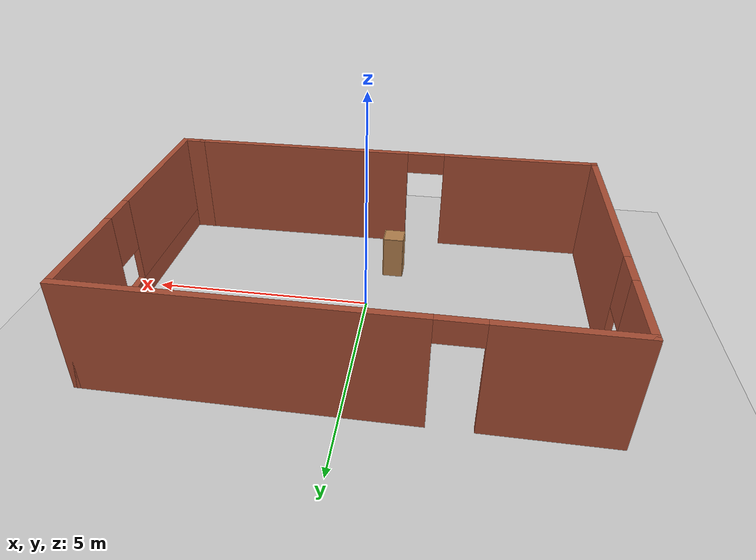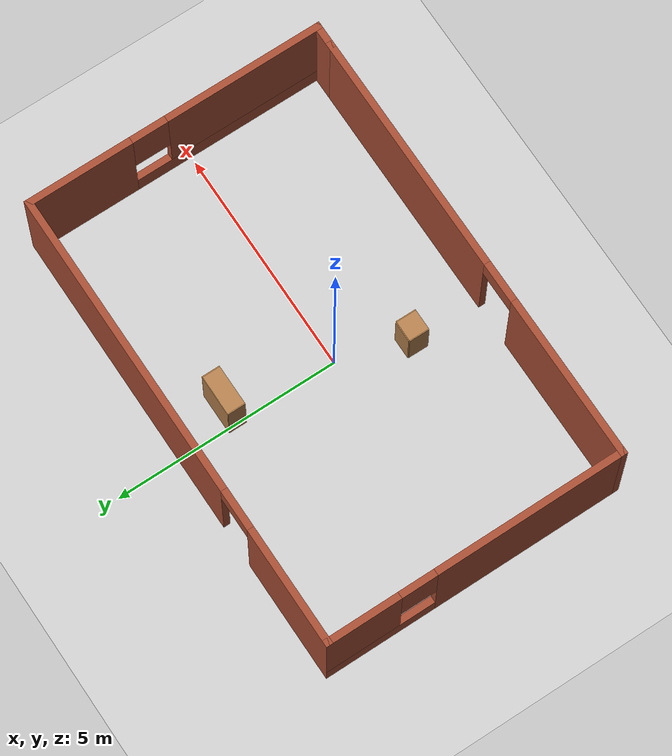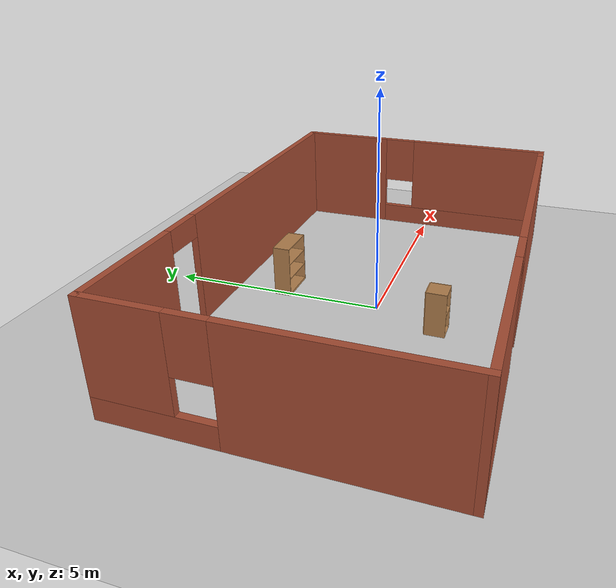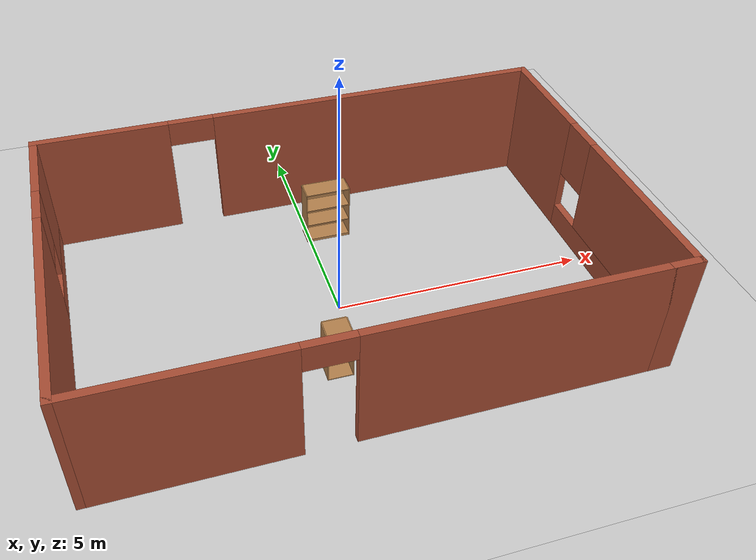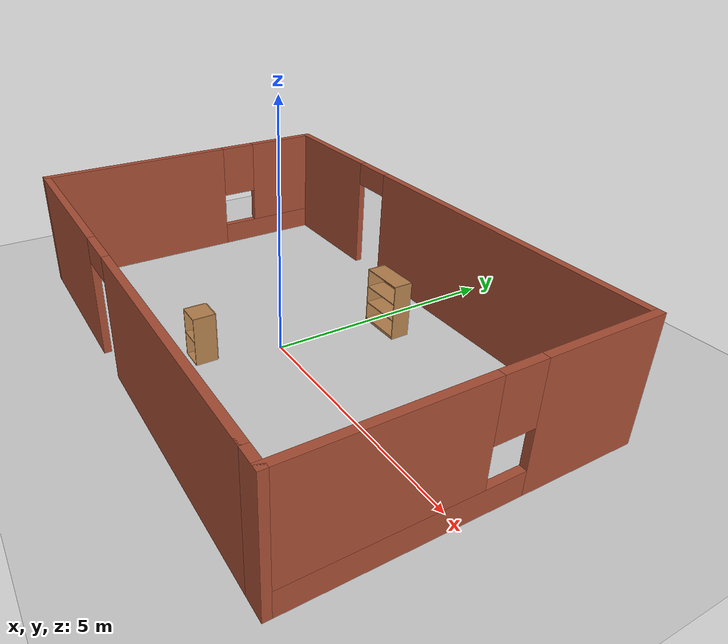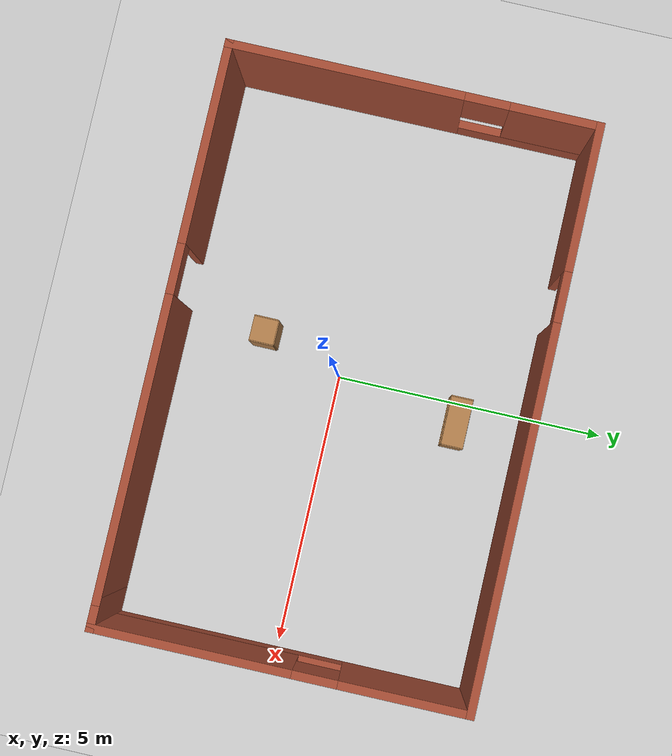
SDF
<sdf version="1.7">
 <world name="default">
  <light name="sun" type="directional">
   <pose>0 0 10 0 -0 0</pose>
   <diffuse>0.8 0.8 0.8 1</diffuse>
   <specular>0.2 0.2 0.2 1</specular>
   <attenuation>
    <range>1000</range>
    <constant>0.9</constant>
    <linear>0.01</linear>
    <quadratic>0.001</quadratic>
   </attenuation>
   <direction>-0.5 0.1 -0.9</direction>
   <spot><inner_angle>0</inner_angle><outer_angle>0</outer_angle><falloff>0</falloff></spot>
  </light>
  <model name="ground_plane">
   <static>1</static>
   <link name="link">
    <collision name="collision">
     <geometry><plane><normal>0 0 1</normal><size>100 100</size></plane></geometry>
     <surface>
      <contact><collide_bitmask>65535</collide_bitmask></contact>
      <friction><ode><mu>100</mu><mu2>50</mu2></ode></friction>
     </surface>
    </collision>
    <visual name="visual">
     <cast_shadows>0</cast_shadows>
     <geometry><plane><normal>0 0 1</normal><size>100 100</size></plane></geometry>
     <material>
      <script><uri>file://media/materials/scripts/gazebo.material</uri><name>Gazebo/Grey</name></script>
     </material>
    </visual>
   </link>
  </model>
  <gravity>0 0 -9.8</gravity>
  <magnetic_field>6e-06 2.3e-05 -4.2e-05</magnetic_field>
  <atmosphere type="adiabatic"/>
  <physics type="ode">
   <max_step_size>0.001</max_step_size>
   <real_time_factor>1</real_time_factor>
   <real_time_update_rate>1000</real_time_update_rate>
  </physics>
  <scene><ambient>0.4 0.4 0.4 1</ambient><background>0.7 0.7 0.7 1</background><shadows>1</shadows></scene>
  <audio><device>default</device></audio>
  <spherical_coordinates>
   <surface_model>EARTH_WGS84</surface_model>
   <latitude_deg>0</latitude_deg>
   <longitude_deg>0</longitude_deg>
   <elevation>0</elevation>
   <heading_deg>0</heading_deg>
  </spherical_coordinates>
  <model name="bookshelf">
   <static>1</static>
   <link name="link">
    <inertial><mass>1</mass></inertial>
    <collision name="back">
     <pose>0 0.005 0.6 0 -0 0</pose>
     <geometry><box><size>0.9 0.01 1.2</size></box></geometry>
    </collision>
    <visual name="visual1">
     <pose>0 0.005 0.6 0 -0 0</pose>
     <geometry><box><size>0.9 0.01 1.2</size></box></geometry>
     <material>
      <script><uri>file://media/materials/scripts/gazebo.material</uri><name>Gazebo/Wood</name></script>
     </material>
    </visual>
    <collision name="left_side">
     <pose>0.45 -0.195 0.6 0 -0 0</pose>
     <geometry><box><size>0.02 0.4 1.2</size></box></geometry>
    </collision>
    <visual name="visual2">
     <pose>0.45 -0.195 0.6 0 -0 0</pose>
     <geometry><box><size>0.02 0.4 1.2</size></box></geometry>
     <material>
      <script><uri>file://media/materials/scripts/gazebo.material</uri><name>Gazebo/Wood</name></script>
     </material>
    </visual>
    <collision name="right_side">
     <pose>-0.45 -0.195 0.6 0 -0 0</pose>
     <geometry><box><size>0.02 0.4 1.2</size></box></geometry>
    </collision>
    <visual name="visual3">
     <pose>-0.45 -0.195 0.6 0 -0 0</pose>
     <geometry><box><size>0.02 0.4 1.2</size></box></geometry>
     <material>
      <script><uri>file://media/materials/scripts/gazebo.material</uri><name>Gazebo/Wood</name></script>
     </material>
    </visual>
    <collision name="bottom">
     <pose>0 -0.195 0.03 0 -0 0</pose>
     <geometry><box><size>0.88 0.4 0.06</size></box></geometry>
    </collision>
    <visual name="visual4">
     <pose>0 -0.195 0.03 0 -0 0</pose>
     <geometry><box><size>0.88 0.4 0.06</size></box></geometry>
     <material>
      <script><uri>file://media/materials/scripts/gazebo.material</uri><name>Gazebo/Wood</name></script>
     </material>
    </visual>
    <collision name="top">
     <pose>0 -0.195 1.19 0 -0 0</pose>
     <geometry><box><size>0.88 0.4 0.02</size></box></geometry>
    </collision>
    <visual name="visual5">
     <pose>0 -0.195 1.19 0 -0 0</pose>
     <geometry><box><size>0.88 0.4 0.02</size></box></geometry>
     <material>
      <script><uri>file://media/materials/scripts/gazebo.material</uri><name>Gazebo/Wood</name></script>
     </material>
    </visual>
    <collision name="low_shelf">
     <pose>0 -0.195 0.43 0 -0 0</pose>
     <geometry><box><size>0.88 0.4 0.02</size></box></geometry>
    </collision>
    <visual name="visual6">
     <pose>0 -0.195 0.43 0 -0 0</pose>
     <geometry><box><size>0.88 0.4 0.02</size></box></geometry>
     <material>
      <script><uri>file://media/materials/scripts/gazebo.material</uri><name>Gazebo/Wood</name></script>
     </material>
    </visual>
    <collision name="high_shelf">
     <pose>0 -0.195 0.8 0 -0 0</pose>
     <geometry><box><size>0.88 0.4 0.02</size></box></geometry>
    </collision>
    <visual name="visual7">
     <pose>0 -0.195 0.8 0 -0 0</pose>
     <geometry><box><size>0.88 0.4 0.02</size></box></geometry>
     <material>
      <script><uri>file://media/materials/scripts/gazebo.material</uri><name>Gazebo/Wood</name></script>
     </material>
    </visual>
   </link>
   <pose>0.38677 2.49076 0 0 -0 0</pose>
  </model>
  <model name="cabinet">
   <static>1</static>
   <link name="cabinet_bottom_plate">
    <inertial>
     <pose>0 0 -1 0 -0 0</pose>
     <inertia><ixx>2.05</ixx><ixy>0</ixy><ixz>0</ixz><iyy>2.05</iyy><iyz>0</iyz><izz>2.05</izz></inertia>
     <mass>25</mass>
    </inertial>
    <collision name="cabinet_bottom_plate_geom">
     <pose>0 0 0.01 0 -0 0</pose>
     <geometry><box><size>0.45 0.45 0.02</size></box></geometry>
    </collision>
    <visual name="cabinet_bottom_plate_geom_visual">
     <pose>0 0 0.01 0 -0 0</pose>
     <geometry><box><size>0.45 0.45 0.02</size></box></geometry>
     <material>
      <script><uri>file://media/materials/scripts/gazebo.material</uri><name>Gazebo/Wood</name></script>
     </material>
    </visual>
    <collision name="cabinet_bottom_plate_geom_cabinet_back_plate">
     <pose>0.235 0 0.51 0 -0 0</pose>
     <geometry><box><size>0.02 0.45 1.02</size></box></geometry>
    </collision>
    <visual name="cabinet_bottom_plate_geom_cabinet_back_plate_visual">
     <pose>0.235 0 0.51 0 -0 0</pose>
     <geometry><box><size>0.02 0.45 1.02</size></box></geometry>
     <material>
      <script><uri>file://media/materials/scripts/gazebo.material</uri><name>Gazebo/Wood</name></script>
     </material>
    </visual>
    <collision name="cabinet_bottom_plate_geom_cabinet_left_plate">
     <pose>0 0.235 0.51 0 -0 0</pose>
     <geometry><box><size>0.45 0.02 1.02</size></box></geometry>
    </collision>
    <visual name="cabinet_bottom_plate_geom_cabinet_left_plate_visual">
     <pose>0 0.235 0.51 0 -0 0</pose>
     <geometry><box><size>0.45 0.02 1.02</size></box></geometry>
     <material>
      <script><uri>file://media/materials/scripts/gazebo.material</uri><name>Gazebo/Wood</name></script>
     </material>
    </visual>
    <collision name="cabinet_bottom_plate_geom_cabinet_middle_plate">
     <pose>0 0 0.51 0 -0 0</pose>
     <geometry><box><size>0.45 0.45 0.02</size></box></geometry>
    </collision>
    <visual name="cabinet_bottom_plate_geom_cabinet_middle_plate_visual">
     <pose>0 0 0.51 0 -0 0</pose>
     <geometry><box><size>0.45 0.45 0.02</size></box></geometry>
     <material>
      <script><uri>file://media/materials/scripts/gazebo.material</uri><name>Gazebo/Wood</name></script>
     </material>
    </visual>
    <collision name="cabinet_bottom_plate_geom_cabinet_right_plate">
     <pose>0 -0.235 0.51 0 -0 0</pose>
     <geometry><box><size>0.45 0.02 1.02</size></box></geometry>
    </collision>
    <visual name="cabinet_bottom_plate_geom_cabinet_right_plate_visual">
     <pose>0 -0.235 0.51 0 -0 0</pose>
     <geometry><box><size>0.45 0.02 1.02</size></box></geometry>
     <material>
      <script><uri>file://media/materials/scripts/gazebo.material</uri><name>Gazebo/Wood</name></script>
     </material>
    </visual>
    <collision name="cabinet_bottom_plate_geom_cabinet_top_plate">
     <pose>0 0 1.01 0 -0 0</pose>
     <geometry><box><size>0.45 0.45 0.02</size></box></geometry>
    </collision>
    <visual name="cabinet_bottom_plate_geom_cabinet_top_plate_visual">
     <pose>0 0 1.01 0 -0 0</pose>
     <geometry><box><size>0.45 0.45 0.02</size></box></geometry>
     <material>
      <script><uri>file://media/materials/scripts/gazebo.material</uri><name>Gazebo/Wood</name></script>
     </material>
    </visual>
   </link>
   <pose>-0.474699 -1.48682 0 0 -0 1.56433</pose>
  </model>
  <model name="test">
   <pose>0.06187 0.243117 0 0 -0 0</pose>
   <link name="Wall_26">
    <pose>-5.15614 -0 0 0 -0 1.5708</pose>
    <visual name="Wall_26_Visual_0">
     <pose>-1.2379 0 1.25 0 -0 0</pose>
     <geometry><box><size>4.27421 0.15 2.5</size></box></geometry>
     <material>
      <script><uri>file://media/materials/scripts/gazebo.material</uri><name>Gazebo/Bricks</name></script>
      <ambient>1 1 1 1</ambient>
     </material>
     <meta><layer>0</layer></meta>
    </visual>
    <collision name="Wall_26_Collision_0">
     <geometry><box><size>4.27421 0.15 2.5</size></box></geometry>
     <pose>-1.2379 0 1.25 0 -0 0</pose>
    </collision>
    <visual name="Wall_26_Visual_1">
     <pose>2.1371 0 0.25 0 -0 0</pose>
     <geometry><box><size>2.47579 0.15 0.5</size></box></geometry>
     <material>
      <script><uri>file://media/materials/scripts/gazebo.material</uri><name>Gazebo/Bricks</name></script>
      <ambient>1 1 1 1</ambient>
     </material>
     <meta><layer>0</layer></meta>
    </visual>
    <collision name="Wall_26_Collision_1">
     <geometry><box><size>2.47579 0.15 0.5</size></box></geometry>
     <pose>2.1371 0 0.25 0 -0 0</pose>
    </collision>
    <visual name="Wall_26_Visual_2">
     <pose>2.5371 0 1.5 0 -0 0</pose>
     <geometry><box><size>1.67579 0.15 2</size></box></geometry>
     <material>
      <script><uri>file://media/materials/scripts/gazebo.material</uri><name>Gazebo/Bricks</name></script>
      <ambient>1 1 1 1</ambient>
     </material>
     <meta><layer>0</layer></meta>
    </visual>
    <collision name="Wall_26_Collision_2">
     <geometry><box><size>1.67579 0.15 2</size></box></geometry>
     <pose>2.5371 0 1.5 0 -0 0</pose>
    </collision>
    <visual name="Wall_26_Visual_3">
     <pose>1.29921 0 1.9 0 -0 0</pose>
     <geometry><box><size>0.8 0.15 1.2</size></box></geometry>
     <material>
      <script><uri>file://media/materials/scripts/gazebo.material</uri><name>Gazebo/Bricks</name></script>
      <ambient>1 1 1 1</ambient>
     </material>
     <meta><layer>0</layer></meta>
    </visual>
    <collision name="Wall_26_Collision_3">
     <geometry><box><size>0.8 0.15 1.2</size></box></geometry>
     <pose>1.29921 0 1.9 0 -0 0</pose>
    </collision>
   </link>
   <link name="Wall_27">
    <pose>0 3.3 0 0 -0 0</pose>
    <visual name="Wall_27_Visual_0">
     <pose>-3.89736 0 1.25 0 -0 0</pose>
     <geometry><box><size>2.66755 0.15 2.5</size></box></geometry>
     <material>
      <script><uri>file://media/materials/scripts/gazebo.material</uri><name>Gazebo/Bricks</name></script>
      <ambient>1 1 1 1</ambient>
     </material>
     <meta><layer>0</layer></meta>
    </visual>
    <collision name="Wall_27_Collision_0">
     <geometry><box><size>2.66755 0.15 2.5</size></box></geometry>
     <pose>-3.89736 0 1.25 0 -0 0</pose>
    </collision>
    <visual name="Wall_27_Visual_1">
     <pose>1.78378 0 1.25 0 -0 0</pose>
     <geometry><box><size>6.89472 0.15 2.5</size></box></geometry>
     <material>
      <script><uri>file://media/materials/scripts/gazebo.material</uri><name>Gazebo/Bricks</name></script>
      <ambient>1 1 1 1</ambient>
     </material>
     <meta><layer>0</layer></meta>
    </visual>
    <collision name="Wall_27_Collision_1">
     <geometry><box><size>6.89472 0.15 2.5</size></box></geometry>
     <pose>1.78378 0 1.25 0 -0 0</pose>
    </collision>
    <visual name="Wall_27_Visual_2">
     <pose>-2.11358 0 2.25 0 -0 0</pose>
     <geometry><box><size>0.9 0.15 0.5</size></box></geometry>
     <material>
      <script><uri>file://media/materials/scripts/gazebo.material</uri><name>Gazebo/Bricks</name></script>
      <ambient>1 1 1 1</ambient>
     </material>
     <meta><layer>0</layer></meta>
    </visual>
    <collision name="Wall_27_Collision_2">
     <geometry><box><size>0.9 0.15 0.5</size></box></geometry>
     <pose>-2.11358 0 2.25 0 -0 0</pose>
    </collision>
   </link>
   <link name="Wall_30">
    <pose>-0.231136 -3.3 0 0 -0 0</pose>
    <visual name="Wall_30_Visual_0">
     <pose>-3.17092 0 1.25 0 -0 0</pose>
     <geometry><box><size>3.65815 0.15 2.5</size></box></geometry>
     <material>
      <script><uri>file://media/materials/scripts/gazebo.material</uri><name>Gazebo/Bricks</name></script>
      <ambient>1 1 1 1</ambient>
     </material>
     <meta><layer>0</layer></meta>
    </visual>
    <collision name="Wall_30_Collision_0">
     <geometry><box><size>3.65815 0.15 2.5</size></box></geometry>
     <pose>-3.17092 0 1.25 0 -0 0</pose>
    </collision>
    <visual name="Wall_30_Visual_1">
     <pose>2.27908 0 1.25 0 -0 0</pose>
     <geometry><box><size>5.44185 0.15 2.5</size></box></geometry>
     <material>
      <script><uri>file://media/materials/scripts/gazebo.material</uri><name>Gazebo/Bricks</name></script>
      <ambient>1 1 1 1</ambient>
     </material>
     <meta><layer>0</layer></meta>
    </visual>
    <collision name="Wall_30_Collision_1">
     <geometry><box><size>5.44185 0.15 2.5</size></box></geometry>
     <pose>2.27908 0 1.25 0 -0 0</pose>
    </collision>
    <visual name="Wall_30_Visual_2">
     <pose>-0.891848 0 2.25 0 -0 0</pose>
     <geometry><box><size>0.9 0.15 0.5</size></box></geometry>
     <material>
      <script><uri>file://media/materials/scripts/gazebo.material</uri><name>Gazebo/Bricks</name></script>
      <ambient>1 1 1 1</ambient>
     </material>
     <meta><layer>0</layer></meta>
    </visual>
    <collision name="Wall_30_Collision_2">
     <geometry><box><size>0.9 0.15 0.5</size></box></geometry>
     <pose>-0.891848 0 2.25 0 -0 0</pose>
    </collision>
   </link>
   <link name="Wall_33">
    <pose>5.15614 -0 0 0 -0 -1.5708</pose>
    <visual name="Wall_33_Visual_0">
     <pose>-2.18332 0 1.25 0 -0 0</pose>
     <geometry><box><size>2.38336 0.15 2.5</size></box></geometry>
     <material>
      <script><uri>file://media/materials/scripts/gazebo.material</uri><name>Gazebo/Bricks</name></script>
      <ambient>1 1 1 1</ambient>
     </material>
     <meta><layer>0</layer></meta>
    </visual>
    <collision name="Wall_33_Collision_0">
     <geometry><box><size>2.38336 0.15 2.5</size></box></geometry>
     <pose>-2.18332 0 1.25 0 -0 0</pose>
    </collision>
    <visual name="Wall_33_Visual_1">
     <pose>1.19168 0 0.25 0 -0 0</pose>
     <geometry><box><size>4.36664 0.15 0.5</size></box></geometry>
     <material>
      <script><uri>file://media/materials/scripts/gazebo.material</uri><name>Gazebo/Bricks</name></script>
      <ambient>1 1 1 1</ambient>
     </material>
     <meta><layer>0</layer></meta>
    </visual>
    <collision name="Wall_33_Collision_1">
     <geometry><box><size>4.36664 0.15 0.5</size></box></geometry>
     <pose>1.19168 0 0.25 0 -0 0</pose>
    </collision>
    <visual name="Wall_33_Visual_2">
     <pose>1.59168 0 1.5 0 -0 0</pose>
     <geometry><box><size>3.56664 0.15 2</size></box></geometry>
     <material>
      <script><uri>file://media/materials/scripts/gazebo.material</uri><name>Gazebo/Bricks</name></script>
      <ambient>1 1 1 1</ambient>
     </material>
     <meta><layer>0</layer></meta>
    </visual>
    <collision name="Wall_33_Collision_2">
     <geometry><box><size>3.56664 0.15 2</size></box></geometry>
     <pose>1.59168 0 1.5 0 -0 0</pose>
    </collision>
    <visual name="Wall_33_Visual_3">
     <pose>-0.591638 0 1.9 0 -0 0</pose>
     <geometry><box><size>0.8 0.15 1.2</size></box></geometry>
     <material>
      <script><uri>file://media/materials/scripts/gazebo.material</uri><name>Gazebo/Bricks</name></script>
      <ambient>1 1 1 1</ambient>
     </material>
     <meta><layer>0</layer></meta>
    </visual>
    <collision name="Wall_33_Collision_3">
     <geometry><box><size>0.8 0.15 1.2</size></box></geometry>
     <pose>-0.591638 0 1.9 0 -0 0</pose>
    </collision>
   </link>
   <link name="Wall_34">
    <collision name="Wall_34_Collision">
     <geometry><box><size>0.612271 0.15 2.5</size></box></geometry>
     <pose>0 0 1.25 0 -0 0</pose>
    </collision>
    <visual name="Wall_34_Visual">
     <pose>0 0 1.25 0 -0 0</pose>
     <geometry><box><size>0.612271 0.15 2.5</size></box></geometry>
     <material>
      <script><uri>file://media/materials/scripts/gazebo.material</uri><name>Gazebo/Bricks</name></script>
      <ambient>1 1 1 1</ambient>
     </material>
     <meta><layer>0</layer></meta>
    </visual>
    <pose>4.925 -3.3 0 0 -0 3.14159</pose>
   </link>
   <static>1</static>
  </model>
 </world>
</sdf>
